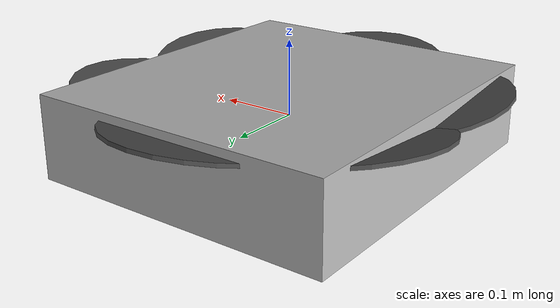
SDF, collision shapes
<sdf version='1.6'>
  <model name='pupil'>
    <pose frame=''>0 0 0 1.57079632679 -0 3.14159265359</pose>
    <link name='base_link'>
      <pose frame=''>0 0 0 0 -0 0</pose>
      <inertial>
        <pose frame=''>0 0 0 0 -0 0</pose>
        <mass>1.1673</mass>
        <inertia>
          <ixx>0.021394</ixx>
          <ixy>0</ixy>
          <ixz>0</ixz>
          <iyy>0.0368463</iyy>
          <iyz>0</iyz>
          <izz>0.0368463</izz>
        </inertia>
      </inertial>
      <collision name='base_link_collision'>
        <pose frame=''>0 -0.007 0 0 -0 0</pose>
        <geometry>
          <box>
            <size>0.414 0.112 0.4554</size>
          </box>
        </geometry>
        <surface>
          <contact>
            <ode>
              <min_depth>0.001</min_depth>
              <max_vel>0</max_vel>
            </ode>
          </contact>
          <friction>
            <ode>
              <mu>0.8</mu>
              <mu2>0.8</mu2>
            </ode>
          </friction>
        </surface>
      </collision>
      <visual name='base_link_visual'>
        <pose frame=''>0 0 0 0 -0 0</pose>
        <geometry>
          <mesh>
            <scale>1 1 1</scale>
            <uri>model://pupil/meshes/base_structure.STL</uri>
          </mesh>
        </geometry>
        <material>
          <script>
            <uri>__default__</uri>
            <name>__default__</name>
          </script>
        </material>
      </visual>
      <gravity>1</gravity>
      <velocity_decay/>
    </link>
    <link name='/imu_link'>
      <pose frame=''>0 0 0 -1.57079632679 -0 0</pose>
      <inertial>
        <pose frame=''>0 0 0 0 -0 0</pose>
        <mass>0.015</mass>
        <inertia>
          <ixx>1e-05</ixx>
          <ixy>0</ixy>
          <ixz>0</ixz>
          <iyy>1e-05</iyy>
          <iyz>0</iyz>
          <izz>1e-05</izz>
        </inertia>
      </inertial>
    </link>
    <joint name='/imu_joint' type='revolute'>
      <child>/imu_link</child>
      <parent>base_link</parent>
      <axis>
        <xyz>1 0 0</xyz>
        <limit>
          <lower>0</lower>
          <upper>0</upper>
          <effort>0</effort>
          <velocity>0</velocity>
        </limit>
        <dynamics>
          <spring_reference>0</spring_reference>
          <spring_stiffness>0</spring_stiffness>
        </dynamics>
        <use_parent_model_frame>1</use_parent_model_frame>
      </axis>
    </joint>
    <link name='camera_link'>
      <pose frame=''>0 -0.007 0.05 0 -0 0</pose>
      <inertial>
        <pose frame=''>0 0 0 0 -0 0</pose>
        <mass>0.015</mass>
        <inertia>
          <ixx>1e-05</ixx>
          <ixy>0</ixy>
          <ixz>0</ixz>
          <iyy>1e-05</iyy>
          <iyz>0</iyz>
          <izz>1e-05</izz>
        </inertia>
      </inertial>
      <sensor name='_camera_pupil' type='camera'>
        <update_rate>30</update_rate>
        <camera name='head'>
          <horizontal_fov>1.39626</horizontal_fov>
          <image>
            <width>800</width>
            <height>800</height>
            <format>R8G8B8</format>
          </image>
          <clip>
            <near>0.02</near>
            <far>300</far>
          </clip>
          <noise>
            <type>gaussian</type>
            <mean>0</mean>
            <stddev>0.007</stddev>
          </noise>
        </camera>
        <plugin name='camera_pupil_controller' filename='libgazebo_ros_camera.so'>
          <robotNamespace/>
          <alwaysOn>1</alwaysOn>
          <updateRate>30.0</updateRate>
          <cameraName>camera_pupil</cameraName>
          <imageTopicName>image_raw</imageTopicName>
          <cameraInfoTopicName>camera_info</cameraInfoTopicName>
          <frameName>camera_link</frameName>
          <hackBaseline>0.0</hackBaseline>
          <distortionK1>0.0</distortionK1>
          <distortionK2>0.0</distortionK2>
          <distortionK3>0.0</distortionK3>
          <distortionT1>0.0</distortionT1>
          <distortionT2>0.0</distortionT2>
        </plugin>
        <pose frame=''>0 0 -0.05 1.57079 0 -1.57079</pose>
      </sensor>
    </link>
    <joint name='camera_joint' type='fixed'>
      <child>camera_link</child>
      <parent>base_link</parent>
      <axis>
        <xyz>1 0 0</xyz>
        <limit>
          <lower>0</lower>
          <upper>0</upper>
          <effort>0</effort>
          <velocity>0</velocity>
        </limit>
        <dynamics>
          <spring_reference>0</spring_reference>
          <spring_stiffness>0</spring_stiffness>
        </dynamics>
        <use_parent_model_frame>1</use_parent_model_frame>
      </axis>
    </joint>

    <link name='rotor_0'>
      <pose frame=''>-0.13526 0.022836 0.078258 -1.74533 -1.0471975512 0</pose>
      <inertial>
        <pose frame=''>0 0 0 0 -0 0</pose>
        <mass>0.005</mass>
        <inertia>
          <ixx>9.75e-07</ixx>
          <ixy>0</ixy>
          <ixz>0</ixz>
          <iyy>0.000273104</iyy>
          <iyz>0</iyz>
          <izz>0.000274004</izz>
        </inertia>
      </inertial>
      <collision name='rotor_0_collision'>
        <pose frame=''>0 0 0 0 -0 0</pose>
        <geometry>
          <cylinder>
            <length>0.005</length>
            <radius>0.128</radius>
          </cylinder>
        </geometry>
        <surface>
          <contact>
            <ode/>
          </contact>
          <friction>
            <ode/>
          </friction>
        </surface>
      </collision>
      <visual name='rotor_0_visual'>
        <pose frame=''>0 0 0 0 -0 0</pose>
        <geometry>
          <mesh>
            <scale>1 1 1</scale>
            <uri>model://rotors_description/meshes/iris_prop_ccw.dae</uri>
          </mesh>
        </geometry>
        <material>
          <script>
            <name>Gazebo/DarkGrey</name>
            <uri>file://media/materials/scripts/gazebo.material</uri>
          </script>
        </material>
      </visual>
      <gravity>1</gravity>
      <velocity_decay/>
    </link>
    <joint name='rotor_0_joint' type='revolute'>
      <child>rotor_0</child>
      <parent>base_link</parent>
      <axis>
        <xyz>0.15038 0.98481 -0.086824</xyz>
          <limit>
          <lower>-1e+16</lower>
          <upper>1e+16</upper>
          <effort>10</effort>
          <velocity>-1</velocity>
        </limit>
        <dynamics>
          <spring_reference>0</spring_reference>
          <spring_stiffness>0</spring_stiffness>
        </dynamics>
        <use_parent_model_frame>1</use_parent_model_frame>
      </axis>
    </joint>
    <link name='rotor_1'>
      <pose frame=''>-3.5595e-06 0.022837 0.15655 -1.74533 0 0</pose>
      <inertial>
        <pose frame=''>0 0 0 0 -0 0</pose>
        <mass>0.005</mass>
        <inertia>
          <ixx>9.75e-07</ixx>
          <ixy>0</ixy>
          <ixz>0</ixz>
          <iyy>0.000273104</iyy>
          <iyz>0</iyz>
          <izz>0.000274004</izz>
        </inertia>
      </inertial>
      <collision name='rotor_1_collision'>
        <pose frame=''>0 0 0 0 -0 0</pose>
        <geometry>
          <cylinder>
            <length>0.005</length>
            <radius>0.128</radius>
          </cylinder>
        </geometry>
        <surface>
          <contact>
            <ode/>
          </contact>
          <friction>
            <ode/>
          </friction>
        </surface>
      </collision>
      <visual name='rotor_1_visual'>
        <pose frame=''>0 0 0 0 -0 0</pose>
        <geometry>
          <mesh>
            <scale>1 1 1</scale>
            <uri>model://rotors_description/meshes/iris_prop_ccw.dae</uri>
          </mesh>
        </geometry>
        <material>
          <script>
            <name>Gazebo/DarkGrey</name>
            <uri>file://media/materials/scripts/gazebo.material</uri>
          </script>
        </material>
      </visual>
      <gravity>1</gravity>
      <velocity_decay/>
    </link>
    <joint name='rotor_1_joint' type='revolute'>
      <child>rotor_1</child>
      <parent>base_link</parent>
      <axis>
        <xyz>0 0.98481 -0.17365</xyz>
        <limit>
          <lower>-1e+16</lower>
          <upper>1e+16</upper>
          <effort>10</effort>
          <velocity>-1</velocity>
        </limit>
        <dynamics>
          <spring_reference>0</spring_reference>
          <spring_stiffness>0</spring_stiffness>
        </dynamics>
        <use_parent_model_frame>1</use_parent_model_frame>
      </axis>
    </joint>
    <link name='rotor_2'>
      <pose frame=''>0.13524 0.022835 0.078255 -1.74533 1.0471975512 0</pose>
<inertial>
        <pose frame=''>0 0 0 0 -0 0</pose>
        <mass>0.005</mass>
        <inertia>
          <ixx>9.75e-07</ixx>
          <ixy>0</ixy>
          <ixz>0</ixz>
          <iyy>0.000273104</iyy>
          <iyz>0</iyz>
          <izz>0.000274004</izz>
        </inertia>
      </inertial>
      <collision name='rotor_2_collision'>
        <pose frame=''>0 0 0 0 -0 0</pose>
        <geometry>
          <cylinder>
            <length>0.005</length>
            <radius>0.128</radius>
          </cylinder>
        </geometry>
        <surface>
          <contact>
            <ode/>
          </contact>
          <friction>
            <ode/>
          </friction>
        </surface>
      </collision>
      <visual name='rotor_2_visual'>
        <pose frame=''>0 0 0 0 -0 0</pose>
        <geometry>
          <mesh>
            <scale>1 1 1</scale>
            <uri>model://rotors_description/meshes/iris_prop_ccw.dae</uri>
          </mesh>
        </geometry>
        <material>
          <script>
            <name>Gazebo/DarkGrey</name>
            <uri>file://media/materials/scripts/gazebo.material</uri>
          </script>
        </material>
      </visual>
      <gravity>1</gravity>
      <velocity_decay/>
    </link>
    <joint name='rotor_2_joint' type='revolute'>
      <child>rotor_2</child>
      <parent>base_link</parent>
      <axis>
        <xyz>0.15038 -0.98481 0.086824</xyz>
        <limit>
          <lower>-1e+16</lower>
          <upper>1e+16</upper>
          <effort>10</effort>
          <velocity>-1</velocity>
        </limit>
        <dynamics>
          <spring_reference>0</spring_reference>
          <spring_stiffness>0</spring_stiffness>
        </dynamics>
        <use_parent_model_frame>1</use_parent_model_frame>
      </axis>
    </joint>
    <link name='rotor_3'>
      <pose frame=''>0.13525 0.022836 -0.077941 -1.74533 2.09439510239 0</pose>
      <inertial>
        <pose frame=''>0 0 0 0 -0 0</pose>
        <mass>0.005</mass>
        <inertia>
          <ixx>9.75e-07</ixx>
          <ixy>0</ixy>
          <ixz>0</ixz>
          <iyy>0.000273104</iyy>
          <iyz>0</iyz>
          <izz>0.000274004</izz>
        </inertia>
      </inertial>
      <collision name='rotor_3_collision'>
        <pose frame=''>0 0 0 0 -0 0</pose>
        <geometry>
          <cylinder>
            <length>0.005</length>
            <radius>0.128</radius>
          </cylinder>
        </geometry>
        <surface>
          <contact>
            <ode/>
          </contact>
          <friction>
            <ode/>
          </friction>
        </surface>
      </collision>
      <visual name='rotor_3_visual'>
        <pose frame=''>0 0 0 0 -0 0</pose>
        <geometry>
          <mesh>
            <scale>1 1 1</scale>
            <uri>model://rotors_description/meshes/iris_prop_ccw.dae</uri>
          </mesh>
        </geometry>
        <material>
          <script>
            <name>Gazebo/DarkGrey</name>
            <uri>file://media/materials/scripts/gazebo.material</uri>
          </script>
        </material>
      </visual>
      <gravity>1</gravity>
      <velocity_decay/>
    </link>
    <joint name='rotor_3_joint' type='revolute'>
      <child>rotor_3</child>
      <parent>base_link</parent>
      <axis>
        <xyz>0.15038 -0.98481 -0.086824</xyz>
        <limit>
          <lower>-1e+16</lower>
          <upper>1e+16</upper>
          <effort>10</effort>
          <velocity>-1</velocity>
        </limit>
        <dynamics>
          <spring_reference>0</spring_reference>
          <spring_stiffness>0</spring_stiffness>
        </dynamics>
        <use_parent_model_frame>1</use_parent_model_frame>
      </axis>
    </joint>
    <link name='rotor_4'>
      <pose frame=''>-5e-06 0.022835 -0.15623 -1.74533 3.14159265359 0</pose>
      <inertial>
        <pose frame=''>0 0 0 0 -0 0</pose>
        <mass>0.005</mass>
        <inertia>
          <ixx>9.75e-07</ixx>
          <ixy>0</ixy>
          <ixz>0</ixz>
          <iyy>0.000273104</iyy>
          <iyz>0</iyz>
          <izz>0.000274004</izz>
        </inertia>
      </inertial>
      <collision name='rotor_4_collision'>
        <pose frame=''>0 0 0 0 -0 0</pose>
        <geometry>
          <cylinder>
            <length>0.005</length>
            <radius>0.128</radius>
          </cylinder>
        </geometry>
        <surface>
          <contact>
            <ode/>
          </contact>
          <friction>
            <ode/>
          </friction>
        </surface>
      </collision>
      <visual name='rotor_4_visual'>
        <pose frame=''>0 0 0 0 -0 0</pose>
        <geometry>
          <mesh>
            <scale>1 1 1</scale>
            <uri>model://rotors_description/meshes/iris_prop_ccw.dae</uri>
          </mesh>
        </geometry>
        <material>
          <script>
            <name>Gazebo/DarkGrey</name>
            <uri>file://media/materials/scripts/gazebo.material</uri>
          </script>
        </material>
      </visual>
      <gravity>1</gravity>
      <velocity_decay/>
    </link>
    <joint name='rotor_4_joint' type='revolute'>
      <child>rotor_4</child>
      <parent>base_link</parent>
      <axis>
        <xyz>0 0.98481 0.17365</xyz>
        <limit>
          <lower>-1e+16</lower>
          <upper>1e+16</upper>
          <effort>10</effort>
          <velocity>-1</velocity>
        </limit>
        <dynamics>
          <spring_reference>0</spring_reference>
          <spring_stiffness>0</spring_stiffness>
        </dynamics>
        <use_parent_model_frame>1</use_parent_model_frame>
      </axis>
    </joint>
    <link name='rotor_5'>
      <pose frame=''>-0.13526 0.022835 -0.077942 -1.74533 -2.09439510239 0</pose>
      <inertial>
        <pose frame=''>0 0 0 0 -0 0</pose>
        <mass>0.005</mass>
        <inertia>
          <ixx>9.75e-07</ixx>
          <ixy>0</ixy>
          <ixz>0</ixz>
          <iyy>0.000273104</iyy>
          <iyz>0</iyz>
          <izz>0.000274004</izz>
        </inertia>
      </inertial>
      <collision name='rotor_5_collision'>
        <pose frame=''>0 0 0 0 -0 0</pose>
        <geometry>
          <cylinder>
            <length>0.005</length>
            <radius>0.128</radius>
          </cylinder>
        </geometry>
        <surface>
          <contact>
            <ode/>
          </contact>
          <friction>
            <ode/>
          </friction>
        </surface>
      </collision>
      <visual name='rotor_5_visual'>
        <pose frame=''>0 0 0 0 -0 0</pose>
        <geometry>
          <mesh>
            <scale>1 1 1</scale>
            <uri>model://rotors_description/meshes/iris_prop_ccw.dae</uri>
          </mesh>
        </geometry>
        <material>
          <script>
            <name>Gazebo/DarkGrey</name>
            <uri>file://media/materials/scripts/gazebo.material</uri>
          </script>
        </material>
      </visual>
      <gravity>1</gravity>
      <velocity_decay/>
    </link>
    <joint name='rotor_5_joint' type='revolute'>
      <child>rotor_5</child>
      <parent>base_link</parent>
      <axis>
        <xyz>0.15038 0.98481 0.086824</xyz>
        <limit>
          <lower>-1e+16</lower>
          <upper>1e+16</upper>
          <effort>10</effort>
          <velocity>-1</velocity>
        </limit>
        <dynamics>
          <spring_reference>0</spring_reference>
          <spring_stiffness>0</spring_stiffness>
        </dynamics>
        <use_parent_model_frame>1</use_parent_model_frame>
      </axis>
    </joint>
    <plugin name='rosbag' filename='libgazebo_multirotor_base_plugin.so'>
      <robotNamespace></robotNamespace>
      <linkName>base_link</linkName>
      <rotorVelocitySlowdownSim>10</rotorVelocitySlowdownSim>
    </plugin>
    <plugin name='front_right_motor_model' filename='libgazebo_motor_model.so'>
      <robotNamespace></robotNamespace>
      <jointName>rotor_5_joint</jointName>
      <linkName>rotor_5</linkName>
      <turningDirection>cw</turningDirection>
      <timeConstantUp>0.0125</timeConstantUp>
      <timeConstantDown>0.025</timeConstantDown>
      <maxRotVelocity>1500</maxRotVelocity>
      <motorConstant>8.54858e-06</motorConstant>
      <momentConstant>0.06</momentConstant>
      <commandSubTopic>/gazebo/command/motor_speed</commandSubTopic>
      <motorNumber>5</motorNumber>
      <rotorDragCoefficient>0.000806428</rotorDragCoefficient>
      <rollingMomentCoefficient>1e-06</rollingMomentCoefficient>
      <motorSpeedPubTopic>/motor_speed/5</motorSpeedPubTopic>
      <rotorVelocitySlowdownSim>10</rotorVelocitySlowdownSim>
    </plugin>
    <plugin name='back_left_motor_model' filename='libgazebo_motor_model.so'>
      <robotNamespace></robotNamespace>
      <jointName>rotor_2_joint</jointName>
      <linkName>rotor_2</linkName>
      <turningDirection>ccw</turningDirection>
      <timeConstantUp>0.0125</timeConstantUp>
      <timeConstantDown>0.025</timeConstantDown>
      <maxRotVelocity>1500</maxRotVelocity>
      <motorConstant>8.54858e-06</motorConstant>
      <momentConstant>0.06</momentConstant>
      <commandSubTopic>/gazebo/command/motor_speed</commandSubTopic>
      <motorNumber>4</motorNumber>
      <rotorDragCoefficient>0.000806428</rotorDragCoefficient>
      <rollingMomentCoefficient>1e-06</rollingMomentCoefficient>
      <motorSpeedPubTopic>/motor_speed/4</motorSpeedPubTopic>
      <rotorVelocitySlowdownSim>10</rotorVelocitySlowdownSim>
    </plugin>
    <plugin name='front_left_motor_model' filename='libgazebo_motor_model.so'>
      <robotNamespace></robotNamespace>
      <jointName>rotor_0_joint</jointName>
      <linkName>rotor_0</linkName>
      <turningDirection>ccw</turningDirection>
      <timeConstantUp>0.0125</timeConstantUp>
      <timeConstantDown>0.025</timeConstantDown>
      <maxRotVelocity>1500</maxRotVelocity>
      <motorConstant>8.54858e-06</motorConstant>
      <momentConstant>0.06</momentConstant>
      <commandSubTopic>/gazebo/command/motor_speed</commandSubTopic>
      <motorNumber>3</motorNumber>
      <rotorDragCoefficient>0.000806428</rotorDragCoefficient>
      <rollingMomentCoefficient>1e-06</rollingMomentCoefficient>
      <motorSpeedPubTopic>/motor_speed/3</motorSpeedPubTopic>
      <rotorVelocitySlowdownSim>10</rotorVelocitySlowdownSim>
    </plugin>
    <plugin name='back_right_motor_model' filename='libgazebo_motor_model.so'>
      <robotNamespace></robotNamespace>
      <jointName>rotor_3_joint</jointName>
      <linkName>rotor_3</linkName>
      <turningDirection>cw</turningDirection>
      <timeConstantUp>0.0125</timeConstantUp>
      <timeConstantDown>0.025</timeConstantDown>
      <maxRotVelocity>1500</maxRotVelocity>
      <motorConstant>8.54858e-06</motorConstant>
      <momentConstant>0.06</momentConstant>
      <commandSubTopic>/gazebo/command/motor_speed</commandSubTopic>
      <motorNumber>2</motorNumber>
      <rotorDragCoefficient>0.000806428</rotorDragCoefficient>
      <rollingMomentCoefficient>1e-06</rollingMomentCoefficient>
      <motorSpeedPubTopic>/motor_speed/2</motorSpeedPubTopic>
      <rotorVelocitySlowdownSim>10</rotorVelocitySlowdownSim>
    </plugin>
    <plugin name='back_left_motor_model' filename='libgazebo_motor_model.so'>
      <robotNamespace></robotNamespace>
      <jointName>rotor_4_joint</jointName>
      <linkName>rotor_4</linkName>
      <turningDirection>ccw</turningDirection>
      <timeConstantUp>0.0125</timeConstantUp>
      <timeConstantDown>0.025</timeConstantDown>
      <maxRotVelocity>1500</maxRotVelocity>
      <motorConstant>8.54858e-06</motorConstant>
      <momentConstant>0.06</momentConstant>
      <commandSubTopic>/gazebo/command/motor_speed</commandSubTopic>
      <motorNumber>1</motorNumber>
      <rotorDragCoefficient>0.000806428</rotorDragCoefficient>
      <rollingMomentCoefficient>1e-06</rollingMomentCoefficient>
      <motorSpeedPubTopic>/motor_speed/1</motorSpeedPubTopic>
      <rotorVelocitySlowdownSim>10</rotorVelocitySlowdownSim>
    </plugin>
    <plugin name='front_left_motor_model' filename='libgazebo_motor_model.so'>
      <robotNamespace></robotNamespace>
      <jointName>rotor_1_joint</jointName>
      <linkName>rotor_1</linkName>
      <turningDirection>cw</turningDirection>
      <timeConstantUp>0.0125</timeConstantUp>
      <timeConstantDown>0.025</timeConstantDown>
      <maxRotVelocity>1500</maxRotVelocity>
      <motorConstant>8.54858e-06</motorConstant>
      <momentConstant>0.06</momentConstant>
      <commandSubTopic>/gazebo/command/motor_speed</commandSubTopic>
      <motorNumber>0</motorNumber>
      <rotorDragCoefficient>0.000806428</rotorDragCoefficient>
      <rollingMomentCoefficient>1e-06</rollingMomentCoefficient>
      <motorSpeedPubTopic>/motor_speed/0</motorSpeedPubTopic>
      <rotorVelocitySlowdownSim>10</rotorVelocitySlowdownSim>
    </plugin>
    <model name='gps0'>
      <link name='link'>
        <pose frame=''>0 0 0 1.57079632679 -0 0</pose>
        <inertial>
          <pose frame=''>0 0 0 0 -0 0</pose>
          <mass>0.01</mass>
          <inertia>
            <ixx>2.1733e-06</ixx>
            <ixy>0</ixy>
            <ixz>0</ixz>
            <iyy>2.1733e-06</iyy>
            <iyz>0</iyz>
            <izz>1.8e-07</izz>
          </inertia>
        </inertial>
        <visual name='visual'>
          <geometry>
            <cylinder>
              <radius>0.01</radius>
              <length>0.002</length>
            </cylinder>
          </geometry>
          <material>
            <script>
              <name>Gazebo/Black</name>
              <uri>__default__</uri>
            </script>
          </material>
        </visual>
        <sensor name='gps' type='gps'>
          <pose frame=''>0 0 0 0 -0 0</pose>
          <plugin name='gps_plugin' filename='libgazebo_gps_plugin.so'>
            <robotNamespace/>
            <gpsNoise>1</gpsNoise>
            <gpsXYRandomWalk>2.0</gpsXYRandomWalk>
            <gpsZRandomWalk>4.0</gpsZRandomWalk>
            <gpsXYNoiseDensity>0.0002</gpsXYNoiseDensity>
            <gpsZNoiseDensity>0.0004</gpsZNoiseDensity>
            <gpsVXYNoiseDensity>0.2</gpsVXYNoiseDensity>
            <gpsVZNoiseDensity>0.4</gpsVZNoiseDensity>
          </plugin>
        </sensor>
      </link>
    </model>
    <joint name='gps0_joint' type='fixed'>
      <parent>base_link</parent>
      <child>gps0::link</child>
    </joint>
    <plugin name='groundtruth_plugin' filename='libgazebo_groundtruth_plugin.so'>
      <robotNamespace/>
    </plugin>
    <plugin name='magnetometer_plugin' filename='libgazebo_magnetometer_plugin.so'>
      <robotNamespace/>
      <pubRate>100</pubRate>
      <noiseDensity>0.0004</noiseDensity>
      <randomWalk>6.4e-06</randomWalk>
      <biasCorrelationTime>600</biasCorrelationTime>
      <magTopic>/mag</magTopic>
    </plugin>
    <plugin name='barometer_plugin' filename='libgazebo_barometer_plugin.so'>
      <robotNamespace/>
      <pubRate>50</pubRate>
      <baroTopic>/baro</baroTopic>
      <baroDriftPaPerSec>0</baroDriftPaPerSec>
    </plugin>
    <plugin name='mavlink_interface' filename='libgazebo_mavlink_interface.so'>
      <robotNamespace/>
      <imuSubTopic>/imu</imuSubTopic>
      <magSubTopic>/mag</magSubTopic>
      <baroSubTopic>/baro</baroSubTopic>
      <mavlink_addr>INADDR_ANY</mavlink_addr>
      <mavlink_udp_port>14560</mavlink_udp_port>
      <mavlink_tcp_port>4560</mavlink_tcp_port>
      <serialEnabled>0</serialEnabled>
      <serialDevice>/dev/ttyACM0</serialDevice>
      <baudRate>921600</baudRate>
      <qgc_addr>INADDR_ANY</qgc_addr>
      <qgc_udp_port>14550</qgc_udp_port>
      <sdk_addr>INADDR_ANY</sdk_addr>
      <sdk_udp_port>14540</sdk_udp_port>
      <hil_mode>0</hil_mode>
      <hil_state_level>0</hil_state_level>
      <vehicle_is_tailsitter>0</vehicle_is_tailsitter>
      <send_vision_estimation>0</send_vision_estimation>
      <send_odometry>1</send_odometry>
      <enable_lockstep>1</enable_lockstep>
      <use_tcp>1</use_tcp>
      <motorSpeedCommandPubTopic>/gazebo/command/motor_speed</motorSpeedCommandPubTopic>
      <control_channels>
        <channel name="rotor0">
          <input_index>0</input_index>
          <input_offset>0</input_offset>
          <input_scaling>1500</input_scaling>
          <zero_position_disarmed>0</zero_position_disarmed>
          <zero_position_armed>100</zero_position_armed>
          <joint_control_type>velocity</joint_control_type>
        </channel>
        <channel name="rotor1">
          <input_index>1</input_index>
          <input_offset>0</input_offset>
          <input_scaling>1500</input_scaling>
          <zero_position_disarmed>0</zero_position_disarmed>
          <zero_position_armed>100</zero_position_armed>
          <joint_control_type>velocity</joint_control_type>
        </channel>
        <channel name="rotor2">
          <input_index>2</input_index>
          <input_offset>0</input_offset>
          <input_scaling>1500</input_scaling>
          <zero_position_disarmed>0</zero_position_disarmed>
          <zero_position_armed>100</zero_position_armed>
          <joint_control_type>velocity</joint_control_type>
        </channel>
        <channel name="rotor3">
          <input_index>3</input_index>
          <input_offset>0</input_offset>
          <input_scaling>1500</input_scaling>
          <zero_position_disarmed>0</zero_position_disarmed>
          <zero_position_armed>100</zero_position_armed>
          <joint_control_type>velocity</joint_control_type>
        </channel>
        <channel name="rotor4">
          <input_index>4</input_index>
          <input_offset>0</input_offset>
          <input_scaling>1500</input_scaling>
          <zero_position_disarmed>0</zero_position_disarmed>
          <zero_position_armed>100</zero_position_armed>
          <joint_control_type>velocity</joint_control_type>
        </channel>
       <channel name="rotor5">
          <input_index>5</input_index>
          <input_offset>0</input_offset>
          <input_scaling>1500</input_scaling>
          <zero_position_disarmed>0</zero_position_disarmed>
          <zero_position_armed>100</zero_position_armed>
          <joint_control_type>velocity</joint_control_type>
        </channel>
        </control_channels>

    </plugin>
    <static>0</static>
    <plugin name='rotors_gazebo_imu_plugin' filename='libgazebo_imu_plugin.so'>
      <robotNamespace/>
      <linkName>/imu_link</linkName>
      <imuTopic>/imu</imuTopic>
      <gyroscopeNoiseDensity>0.00018665</gyroscopeNoiseDensity>
      <gyroscopeRandomWalk>3.8785e-05</gyroscopeRandomWalk>
      <gyroscopeBiasCorrelationTime>1000.0</gyroscopeBiasCorrelationTime>
      <gyroscopeTurnOnBiasSigma>0.0087</gyroscopeTurnOnBiasSigma>
      <accelerometerNoiseDensity>0.00186</accelerometerNoiseDensity>
      <accelerometerRandomWalk>0.006</accelerometerRandomWalk>
      <accelerometerBiasCorrelationTime>300.0</accelerometerBiasCorrelationTime>
      <accelerometerTurnOnBiasSigma>0.196</accelerometerTurnOnBiasSigma>
    </plugin>
  </model>
</sdf>
